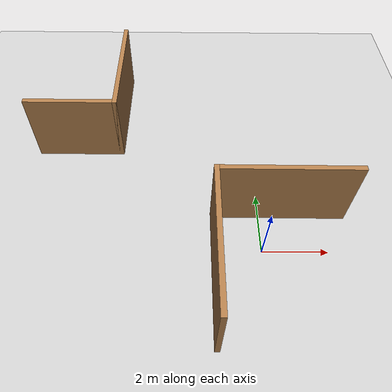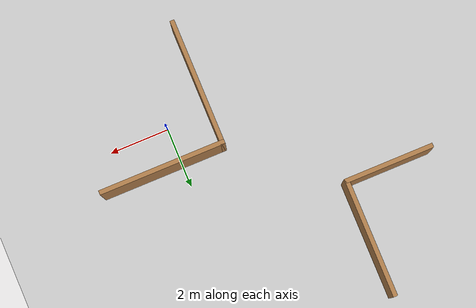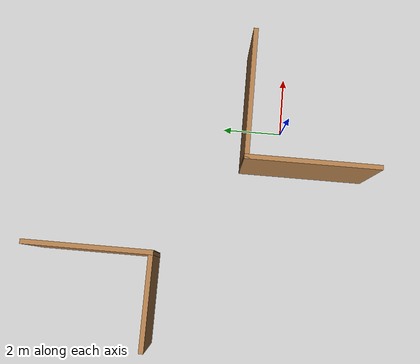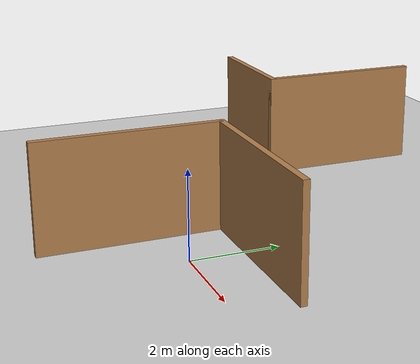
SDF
<sdf version="1.6">
 <world name="default">
  <physics name="default_physics" default="0" type="ode">
   <ode>
    <solver>
     <type>quick</type>
     <iters>100</iters>
     <sor>1</sor>
     <use_dynamic_moi_rescaling>0</use_dynamic_moi_rescaling>
    </solver>
    <constraints>
     <cfm>0</cfm>
     <erp>0.9</erp>
     <contact_max_correcting_vel>0.1</contact_max_correcting_vel>
     <contact_surface_layer>0</contact_surface_layer>
    </constraints>
   </ode>
   <real_time_update_rate>-1</real_time_update_rate>
   <max_step_size>0.001</max_step_size>
   <real_time_factor>1</real_time_factor>
  </physics>
  <light name="sun" type="directional">
   <pose>0 0 10 0 -0 0</pose>
   <diffuse>0.8 0.8 0.8 1</diffuse>
   <specular>0.2 0.2 0.2 1</specular>
   <attenuation>
    <range>1000</range>
    <constant>0.9</constant>
    <linear>0.01</linear>
    <quadratic>0.001</quadratic>
   </attenuation>
   <direction>-0.5 0.1 -0.9</direction>
  </light>
  <model name="ground_plane">
   <static>1</static>
   <link name="link">
    <collision name="collision">
     <geometry><plane><normal>0 0 1</normal><size>100 100</size></plane></geometry>
     <surface>
      <contact><collide_bitmask>65535</collide_bitmask></contact>
      <friction><ode><mu>100</mu><mu2>50</mu2></ode></friction>
     </surface>
    </collision>
    <visual name="visual">
     <cast_shadows>0</cast_shadows>
     <geometry><plane><normal>0 0 1</normal><size>100 100</size></plane></geometry>
     <material>
      <script><uri>file://media/materials/scripts/gazebo.material</uri><name>Gazebo/Grey</name></script>
     </material>
    </visual>
   </link>
  </model>
  <gravity>0 0 -9.8</gravity>
  <magnetic_field>6e-06 2.3e-05 -4.2e-05</magnetic_field>
  <atmosphere type="adiabatic"/>
  <scene><ambient>0.4 0.4 0.4 1</ambient><background>0.7 0.7 0.7 1</background><shadows>1</shadows></scene>
  <spherical_coordinates>
   <surface_model>EARTH_WGS84</surface_model>
   <latitude_deg>0</latitude_deg>
   <longitude_deg>0</longitude_deg>
   <elevation>0</elevation>
   <heading_deg>0</heading_deg>
  </spherical_coordinates>
  <model name="Untitled">
   <pose>-2.39925 2.47171 0 0 -0 0</pose>
   <link name="Wall_15">
    <collision name="Wall_15_Collision">
     <geometry><box><size>3 0.15 2.5</size></box></geometry>
     <pose>0 0 1.25 0 -0 0</pose>
    </collision>
    <visual name="Wall_15_Visual">
     <pose>0 0 1.25 0 -0 0</pose>
     <geometry><box><size>3 0.15 2.5</size></box></geometry>
     <material>
      <script><uri>file://media/materials/scripts/gazebo.material</uri><name>Gazebo/Wood</name></script>
      <ambient>1 1 1 1</ambient>
     </material>
     <meta><layer>0</layer></meta>
    </visual>
    <pose>-3.62556 1.43606 0 0 -0 0</pose>
   </link>
   <link name="Wall_20">
    <collision name="Wall_20_Collision">
     <geometry><box><size>4 0.15 2.5</size></box></geometry>
     <pose>0 0 1.25 0 -0 0</pose>
    </collision>
    <visual name="Wall_20_Visual">
     <pose>0 0 1.25 0 -0 0</pose>
     <geometry><box><size>4 0.15 2.5</size></box></geometry>
     <material>
      <script><uri>file://media/materials/scripts/gazebo.material</uri><name>Gazebo/Wood</name></script>
      <ambient>1 1 1 1</ambient>
     </material>
     <meta><layer>0</layer></meta>
    </visual>
    <pose>-2.20056 3.36106 0 0 -0 1.5708</pose>
   </link>
   <link name="Wall_22">
    <collision name="Wall_22_Collision">
     <geometry><box><size>4.25 0.15 2.5</size></box></geometry>
     <pose>0 0 1.25 0 -0 0</pose>
    </collision>
    <visual name="Wall_22_Visual">
     <pose>0 0 1.25 0 -0 0</pose>
     <geometry><box><size>4.25 0.15 2.5</size></box></geometry>
     <material>
      <script><uri>file://media/materials/scripts/gazebo.material</uri><name>Gazebo/Wood</name></script>
      <ambient>1 1 1 1</ambient>
     </material>
     <meta><layer>0</layer></meta>
    </visual>
    <pose>3.00056 -1.18606 0 0 -0 0</pose>
   </link>
   <link name="Wall_9">
    <collision name="Wall_9_Collision">
     <geometry><box><size>4.25 0.15 2.5</size></box></geometry>
     <pose>0 0 1.25 0 -0 0</pose>
    </collision>
    <visual name="Wall_9_Visual">
     <pose>0 0 1.25 0 -0 0</pose>
     <geometry><box><size>4.25 0.15 2.5</size></box></geometry>
     <material>
      <script><uri>file://media/materials/scripts/gazebo.material</uri><name>Gazebo/Wood</name></script>
      <ambient>1 1 1 1</ambient>
     </material>
     <meta><layer>0</layer></meta>
    </visual>
    <pose>0.950562 -3.23606 0 0 -0 1.5708</pose>
   </link>
   <static>1</static>
  </model>
 </world>
</sdf>
